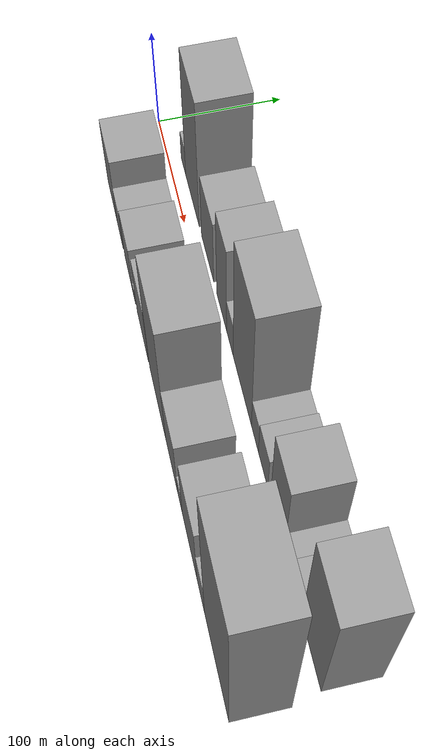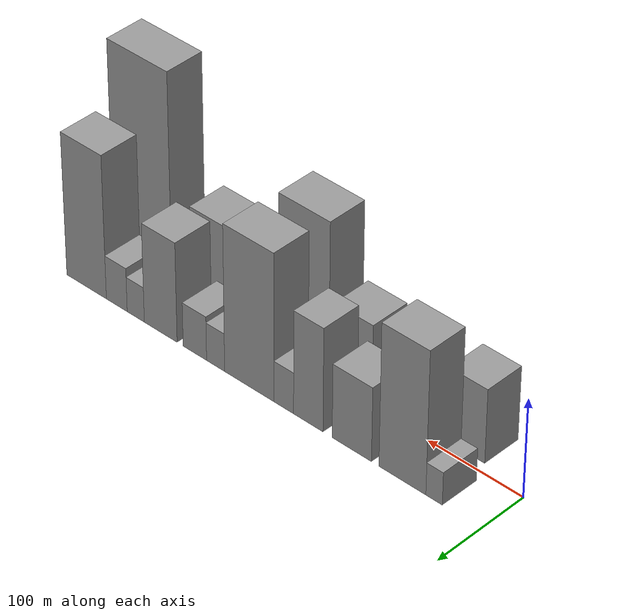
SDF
<sdf version="1.6">
 <world name="default">
  <scene>
   <sky><clouds><speed>12</speed></clouds></sky>
   <ambient>0.4 0.4 0.4 1</ambient>
   <background>0.7 0.7 0.7 1</background>
   <shadows>1</shadows>
  </scene>
  <gravity>0 0 -9.8066</gravity>
  <magnetic_field>6e-06 2.3e-05 -4.2e-05</magnetic_field>
  <physics default="0" name="default_physics" type="ode">
   <ode>
    <solver>
     <type>quick</type>
     <iters>10</iters>
     <sor>1.0</sor>
     <use_dynamic_moi_rescaling>0</use_dynamic_moi_rescaling>
    </solver>
    <constraints>
     <cfm>0</cfm>
     <erp>0.2</erp>
     <contact_max_correcting_vel>100</contact_max_correcting_vel>
     <contact_surface_layer>0.001</contact_surface_layer>
    </constraints>
   </ode>
   <max_step_size>0.004</max_step_size>
   <real_time_factor>1</real_time_factor>
   <real_time_update_rate>250</real_time_update_rate>
  </physics>
  <light name="sun" type="directional">
   <pose>0 0 10 0 0 0</pose>
   <diffuse>0.8 0.8 0.8 1</diffuse>
   <specular>0.2 0.2 0.2 1</specular>
   <attenuation>
    <range>1000</range>
    <constant>0.9</constant>
    <linear>0.01</linear>
    <quadratic>0.001</quadratic>
   </attenuation>
   <direction>-0.5 0.1 -0.9</direction>
  </light>
  <model name="building_1">
   <static>1</static>
   <pose>48.5737 30.0000 0 0.000000 0.000000 1.570796</pose>
   <link name="link">
    <pose>0 0 16.50 0 0 0</pose>
    <collision name="collision"><geometry><box><size>40.0000 17.1474 33.0000</size></box></geometry></collision>
    <visual name="visual">
     <cast_shadows>0</cast_shadows>
     <geometry><box><size>40.0000 17.1474 33.0000</size></box></geometry>
     <material>
      <script>
       <uri>model://grey_wall/materials/scripts</uri>
       <uri>model://grey_wall/materials/textures</uri>
       <name>vrc/grey_wall</name>
      </script>
     </material>
    </visual>
   </link>
  </model>
  <model name="building_2">
   <static>1</static>
   <pose>81.9354 30.0000 0 0.000000 0.000000 1.570796</pose>
   <link name="link">
    <pose>0 0 72.00 0 0 0</pose>
    <collision name="collision"><geometry><box><size>40.0000 49.5760 144.0000</size></box></geometry></collision>
    <visual name="visual">
     <cast_shadows>0</cast_shadows>
     <geometry><box><size>40.0000 49.5760 144.0000</size></box></geometry>
     <material>
      <script>
       <uri>model://grey_wall/materials/scripts</uri>
       <uri>model://grey_wall/materials/textures</uri>
       <name>vrc/grey_wall</name>
      </script>
     </material>
    </visual>
   </link>
  </model>
  <model name="building_3">
   <static>1</static>
   <pose>135.8961 30.0000 0 0.000000 0.000000 1.570796</pose>
   <link name="link">
    <pose>0 0 37.50 0 0 0</pose>
    <collision name="collision"><geometry><box><size>40.0000 42.3454 75.0000</size></box></geometry></collision>
    <visual name="visual">
     <cast_shadows>0</cast_shadows>
     <geometry><box><size>40.0000 42.3454 75.0000</size></box></geometry>
     <material>
      <script>
       <uri>model://grey_wall/materials/scripts</uri>
       <uri>model://grey_wall/materials/textures</uri>
       <name>vrc/grey_wall</name>
      </script>
     </material>
    </visual>
   </link>
  </model>
  <model name="building_4">
   <static>1</static>
   <pose>183.2351 30.0000 0 0.000000 0.000000 1.570796</pose>
   <link name="link">
    <pose>0 0 52.50 0 0 0</pose>
    <collision name="collision"><geometry><box><size>40.0000 32.3327 105.0000</size></box></geometry></collision>
    <visual name="visual">
     <cast_shadows>0</cast_shadows>
     <geometry><box><size>40.0000 32.3327 105.0000</size></box></geometry>
     <material>
      <script>
       <uri>model://grey_wall/materials/scripts</uri>
       <uri>model://grey_wall/materials/textures</uri>
       <name>vrc/grey_wall</name>
      </script>
     </material>
    </visual>
   </link>
  </model>
  <model name="building_5">
   <static>1</static>
   <pose>210.2238 30.0000 0 0.000000 0.000000 1.570796</pose>
   <link name="link">
    <pose>0 0 21.00 0 0 0</pose>
    <collision name="collision"><geometry><box><size>40.0000 21.6445 42.0000</size></box></geometry></collision>
    <visual name="visual">
     <cast_shadows>0</cast_shadows>
     <geometry><box><size>40.0000 21.6445 42.0000</size></box></geometry>
     <material>
      <script>
       <uri>model://grey_wall/materials/scripts</uri>
       <uri>model://grey_wall/materials/textures</uri>
       <name>vrc/grey_wall</name>
      </script>
     </material>
    </visual>
   </link>
  </model>
  <model name="building_6">
   <static>1</static>
   <pose>248.8813 30.0000 0 0.000000 0.000000 1.570796</pose>
   <link name="link">
    <pose>0 0 75.00 0 0 0</pose>
    <collision name="collision"><geometry><box><size>40.0000 55.6705 150.0000</size></box></geometry></collision>
    <visual name="visual">
     <cast_shadows>0</cast_shadows>
     <geometry><box><size>40.0000 55.6705 150.0000</size></box></geometry>
     <material>
      <script>
       <uri>model://grey_wall/materials/scripts</uri>
       <uri>model://grey_wall/materials/textures</uri>
       <name>vrc/grey_wall</name>
      </script>
     </material>
    </visual>
   </link>
  </model>
  <model name="building_7">
   <static>1</static>
   <pose>287.0346 30.0000 0 0.000000 0.000000 1.570796</pose>
   <link name="link">
    <pose>0 0 19.50 0 0 0</pose>
    <collision name="collision"><geometry><box><size>40.0000 20.6361 39.0000</size></box></geometry></collision>
    <visual name="visual">
     <cast_shadows>0</cast_shadows>
     <geometry><box><size>40.0000 20.6361 39.0000</size></box></geometry>
     <material>
      <script>
       <uri>model://grey_wall/materials/scripts</uri>
       <uri>model://grey_wall/materials/textures</uri>
       <name>vrc/grey_wall</name>
      </script>
     </material>
    </visual>
   </link>
  </model>
  <model name="building_8">
   <static>1</static>
   <pose>310.8475 30.0000 0 0.000000 0.000000 1.570796</pose>
   <link name="link">
    <pose>0 0 22.50 0 0 0</pose>
    <collision name="collision"><geometry><box><size>40.0000 26.9898 45.0000</size></box></geometry></collision>
    <visual name="visual">
     <cast_shadows>0</cast_shadows>
     <geometry><box><size>40.0000 26.9898 45.0000</size></box></geometry>
     <material>
      <script>
       <uri>model://grey_wall/materials/scripts</uri>
       <uri>model://grey_wall/materials/textures</uri>
       <name>vrc/grey_wall</name>
      </script>
     </material>
    </visual>
   </link>
  </model>
  <model name="building_9">
   <static>1</static>
   <pose>350.5133 30.0000 0 0.000000 0.000000 1.570796</pose>
   <link name="link">
    <pose>0 0 51.00 0 0 0</pose>
    <collision name="collision"><geometry><box><size>40.0000 38.3417 102.0000</size></box></geometry></collision>
    <visual name="visual">
     <cast_shadows>0</cast_shadows>
     <geometry><box><size>40.0000 38.3417 102.0000</size></box></geometry>
     <material>
      <script>
       <uri>model://grey_wall/materials/scripts</uri>
       <uri>model://grey_wall/materials/textures</uri>
       <name>vrc/grey_wall</name>
      </script>
     </material>
    </visual>
   </link>
  </model>
  <model name="building_10">
   <static>1</static>
   <pose>379.8032 30.0000 0 0.000000 0.000000 1.570796</pose>
   <link name="link">
    <pose>0 0 18.00 0 0 0</pose>
    <collision name="collision"><geometry><box><size>40.0000 20.2380 36.0000</size></box></geometry></collision>
    <visual name="visual">
     <cast_shadows>0</cast_shadows>
     <geometry><box><size>40.0000 20.2380 36.0000</size></box></geometry>
     <material>
      <script>
       <uri>model://grey_wall/materials/scripts</uri>
       <uri>model://grey_wall/materials/textures</uri>
       <name>vrc/grey_wall</name>
      </script>
     </material>
    </visual>
   </link>
  </model>
  <model name="building_11">
   <static>1</static>
   <pose>402.3380 30.0000 0 0.000000 0.000000 1.570796</pose>
   <link name="link">
    <pose>0 0 22.50 0 0 0</pose>
    <collision name="collision"><geometry><box><size>40.0000 24.8316 45.0000</size></box></geometry></collision>
    <visual name="visual">
     <cast_shadows>0</cast_shadows>
     <geometry><box><size>40.0000 24.8316 45.0000</size></box></geometry>
     <material>
      <script>
       <uri>model://grey_wall/materials/scripts</uri>
       <uri>model://grey_wall/materials/textures</uri>
       <name>vrc/grey_wall</name>
      </script>
     </material>
    </visual>
   </link>
  </model>
  <model name="building_12">
   <static>1</static>
   <pose>438.5787 30.0000 0 0.000000 0.000000 1.570796</pose>
   <link name="link">
    <pose>0 0 73.50 0 0 0</pose>
    <collision name="collision"><geometry><box><size>40.0000 47.6497 147.0000</size></box></geometry></collision>
    <visual name="visual">
     <cast_shadows>0</cast_shadows>
     <geometry><box><size>40.0000 47.6497 147.0000</size></box></geometry>
     <material>
      <script>
       <uri>model://grey_wall/materials/scripts</uri>
       <uri>model://grey_wall/materials/textures</uri>
       <name>vrc/grey_wall</name>
      </script>
     </material>
    </visual>
   </link>
  </model>
  <model name="building_13">
   <static>1</static>
   <pose>69.1378 -30.0000 0 0.000000 0.000000 1.570796</pose>
   <link name="link">
    <pose>0 0 37.50 0 0 0</pose>
    <collision name="collision"><geometry><box><size>40.0000 40.2757 75.0000</size></box></geometry></collision>
    <visual name="visual">
     <cast_shadows>0</cast_shadows>
     <geometry><box><size>40.0000 40.2757 75.0000</size></box></geometry>
     <material>
      <script>
       <uri>model://grey_wall/materials/scripts</uri>
       <uri>model://grey_wall/materials/textures</uri>
       <name>vrc/grey_wall</name>
      </script>
     </material>
    </visual>
   </link>
  </model>
  <model name="building_14">
   <static>1</static>
   <pose>101.3730 -30.0000 0 0.000000 0.000000 1.570796</pose>
   <link name="link">
    <pose>0 0 22.50 0 0 0</pose>
    <collision name="collision"><geometry><box><size>40.0000 24.1945 45.0000</size></box></geometry></collision>
    <visual name="visual">
     <cast_shadows>0</cast_shadows>
     <geometry><box><size>40.0000 24.1945 45.0000</size></box></geometry>
     <material>
      <script>
       <uri>model://grey_wall/materials/scripts</uri>
       <uri>model://grey_wall/materials/textures</uri>
       <name>vrc/grey_wall</name>
      </script>
     </material>
    </visual>
   </link>
  </model>
  <model name="building_15">
   <static>1</static>
   <pose>137.7947 -30.0000 0 0.000000 0.000000 1.570796</pose>
   <link name="link">
    <pose>0 0 30.00 0 0 0</pose>
    <collision name="collision"><geometry><box><size>40.0000 34.6490 60.0000</size></box></geometry></collision>
    <visual name="visual">
     <cast_shadows>0</cast_shadows>
     <geometry><box><size>40.0000 34.6490 60.0000</size></box></geometry>
     <material>
      <script>
       <uri>model://grey_wall/materials/scripts</uri>
       <uri>model://grey_wall/materials/textures</uri>
       <name>vrc/grey_wall</name>
      </script>
     </material>
    </visual>
   </link>
  </model>
  <model name="building_16">
   <static>1</static>
   <pose>158.8252 -30.0000 0 0.000000 0.000000 1.570796</pose>
   <link name="link">
    <pose>0 0 9.00 0 0 0</pose>
    <collision name="collision"><geometry><box><size>40.0000 7.4119 18.0000</size></box></geometry></collision>
    <visual name="visual">
     <cast_shadows>0</cast_shadows>
     <geometry><box><size>40.0000 7.4119 18.0000</size></box></geometry>
     <material>
      <script>
       <uri>model://grey_wall/materials/scripts</uri>
       <uri>model://grey_wall/materials/textures</uri>
       <name>vrc/grey_wall</name>
      </script>
     </material>
    </visual>
   </link>
  </model>
  <model name="building_17">
   <static>1</static>
   <pose>190.7466 -30.0000 0 0.000000 0.000000 1.570796</pose>
   <link name="link">
    <pose>0 0 36.00 0 0 0</pose>
    <collision name="collision"><geometry><box><size>40.0000 42.4309 72.0000</size></box></geometry></collision>
    <visual name="visual">
     <cast_shadows>0</cast_shadows>
     <geometry><box><size>40.0000 42.4309 72.0000</size></box></geometry>
     <material>
      <script>
       <uri>model://grey_wall/materials/scripts</uri>
       <uri>model://grey_wall/materials/textures</uri>
       <name>vrc/grey_wall</name>
      </script>
     </material>
    </visual>
   </link>
  </model>
  <model name="building_18">
   <static>1</static>
   <pose>245.2908 -30.0000 0 0.000000 0.000000 1.570796</pose>
   <link name="link">
    <pose>0 0 75.00 0 0 0</pose>
    <collision name="collision"><geometry><box><size>40.0000 56.6573 150.0000</size></box></geometry></collision>
    <visual name="visual">
     <cast_shadows>0</cast_shadows>
     <geometry><box><size>40.0000 56.6573 150.0000</size></box></geometry>
     <material>
      <script>
       <uri>model://grey_wall/materials/scripts</uri>
       <uri>model://grey_wall/materials/textures</uri>
       <name>vrc/grey_wall</name>
      </script>
     </material>
    </visual>
   </link>
  </model>
  <model name="building_19">
   <static>1</static>
   <pose>293.7954 -30.0000 0 0.000000 0.000000 1.570796</pose>
   <link name="link">
    <pose>0 0 37.50 0 0 0</pose>
    <collision name="collision"><geometry><box><size>40.0000 40.3519 75.0000</size></box></geometry></collision>
    <visual name="visual">
     <cast_shadows>0</cast_shadows>
     <geometry><box><size>40.0000 40.3519 75.0000</size></box></geometry>
     <material>
      <script>
       <uri>model://grey_wall/materials/scripts</uri>
       <uri>model://grey_wall/materials/textures</uri>
       <name>vrc/grey_wall</name>
      </script>
     </material>
    </visual>
   </link>
  </model>
  <model name="building_20">
   <static>1</static>
   <pose>321.4740 -30.0000 0 0.000000 0.000000 1.570796</pose>
   <link name="link">
    <pose>0 0 15.00 0 0 0</pose>
    <collision name="collision"><geometry><box><size>40.0000 15.0052 30.0000</size></box></geometry></collision>
    <visual name="visual">
     <cast_shadows>0</cast_shadows>
     <geometry><box><size>40.0000 15.0052 30.0000</size></box></geometry>
     <material>
      <script>
       <uri>model://grey_wall/materials/scripts</uri>
       <uri>model://grey_wall/materials/textures</uri>
       <name>vrc/grey_wall</name>
      </script>
     </material>
    </visual>
   </link>
  </model>
  <model name="building_21">
   <static>1</static>
   <pose>352.0310 -30.0000 0 0.000000 0.000000 1.570796</pose>
   <link name="link">
    <pose>0 0 42.00 0 0 0</pose>
    <collision name="collision"><geometry><box><size>40.0000 46.1087 84.0000</size></box></geometry></collision>
    <visual name="visual">
     <cast_shadows>0</cast_shadows>
     <geometry><box><size>40.0000 46.1087 84.0000</size></box></geometry>
     <material>
      <script>
       <uri>model://grey_wall/materials/scripts</uri>
       <uri>model://grey_wall/materials/textures</uri>
       <name>vrc/grey_wall</name>
      </script>
     </material>
    </visual>
   </link>
  </model>
  <model name="building_22">
   <static>1</static>
   <pose>386.5818 -30.0000 0 0.000000 0.000000 1.570796</pose>
   <link name="link">
    <pose>0 0 22.50 0 0 0</pose>
    <collision name="collision"><geometry><box><size>40.0000 22.9930 45.0000</size></box></geometry></collision>
    <visual name="visual">
     <cast_shadows>0</cast_shadows>
     <geometry><box><size>40.0000 22.9930 45.0000</size></box></geometry>
     <material>
      <script>
       <uri>model://grey_wall/materials/scripts</uri>
       <uri>model://grey_wall/materials/textures</uri>
       <name>vrc/grey_wall</name>
      </script>
     </material>
    </visual>
   </link>
  </model>
  <model name="building_23">
   <static>1</static>
   <pose>432.8711 -30.0000 0 0.000000 0.000000 1.570796</pose>
   <link name="link">
    <pose>0 0 103.50 0 0 0</pose>
    <collision name="collision"><geometry><box><size>40.0000 69.5854 207.0000</size></box></geometry></collision>
    <visual name="visual">
     <cast_shadows>0</cast_shadows>
     <geometry><box><size>40.0000 69.5854 207.0000</size></box></geometry>
     <material>
      <script>
       <uri>model://grey_wall/materials/scripts</uri>
       <uri>model://grey_wall/materials/textures</uri>
       <name>vrc/grey_wall</name>
      </script>
     </material>
    </visual>
   </link>
  </model>
 </world>
</sdf>
